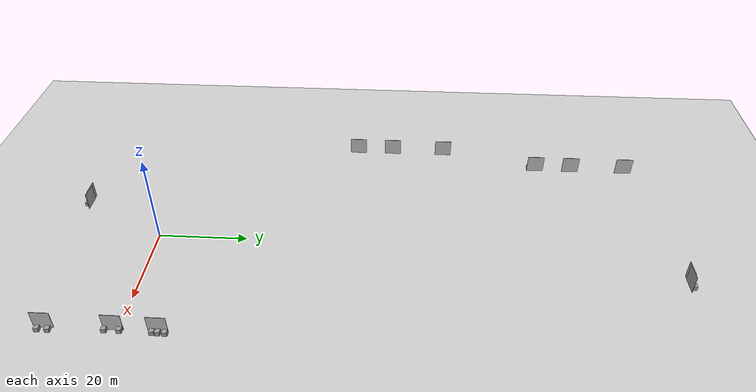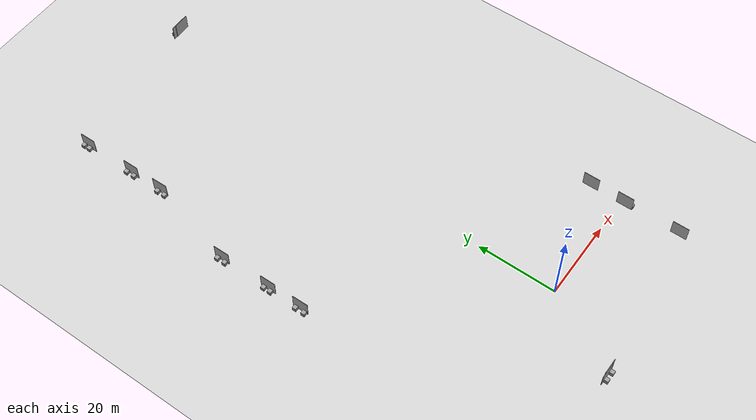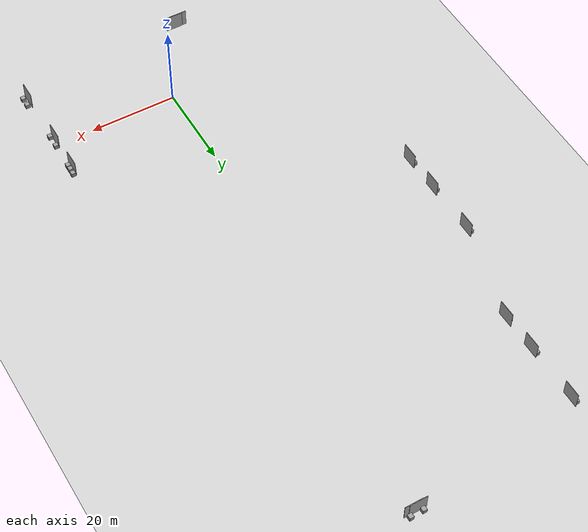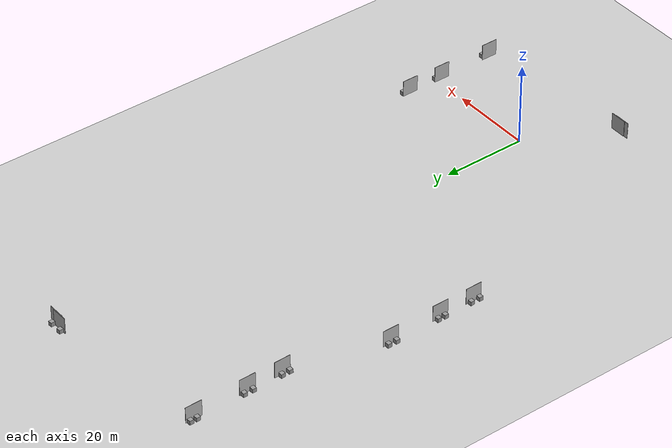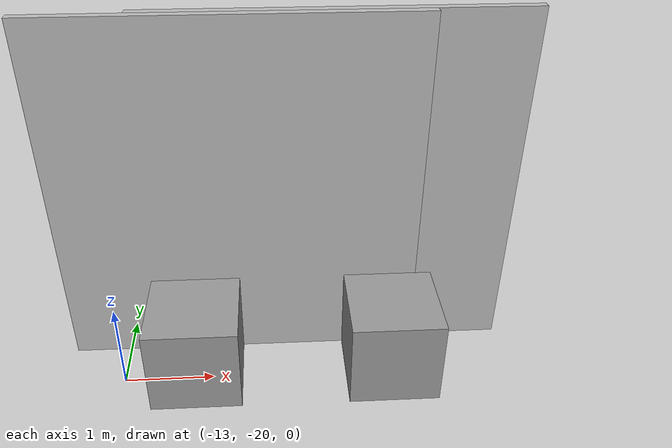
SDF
<sdf version="1.7">
 <world name="default">
  <model name="ground_plane">
   <static>1</static>
   <link name="link">
    <collision name="collision">
     <geometry><plane><normal>0 0 1</normal><size>400 400</size></plane></geometry>
     <surface><friction><ode><mu>100</mu><mu2>50</mu2></ode></friction></surface>
    </collision>
    <visual name="visual">
     <cast_shadows>0</cast_shadows>
     <geometry><plane><normal>0 0 1</normal><size>400 400</size></plane></geometry>
     <material>
      <script><uri>file://media/materials/scripts/gazebo.material</uri><name>Gazebo/Grey</name></script>
     </material>
    </visual>
   </link>
  </model>
  <light name="sun" type="directional">
   <pose>0 0 10 0 -0 0</pose>
   <diffuse>0.8 0.8 0.8 1</diffuse>
   <specular>0.2 0.2 0.2 1</specular>
   <attenuation>
    <range>1000</range>
    <constant>0.9</constant>
    <linear>0.01</linear>
    <quadratic>0.001</quadratic>
   </attenuation>
   <direction>-0.5 0.1 -0.9</direction>
   <spot><inner_angle>0</inner_angle><outer_angle>0</outer_angle><falloff>0</falloff></spot>
  </light>
  <gravity>0 0 -9.8</gravity>
  <magnetic_field>6e-06 2.3e-05 -4.2e-05</magnetic_field>
  <atmosphere type="adiabatic"/>
  <physics name="default_physics" default="0" type="ode">
   <max_step_size>0.001</max_step_size>
   <real_time_factor>1</real_time_factor>
   <real_time_update_rate>1000</real_time_update_rate>
  </physics>
  <scene><ambient>0.4 0.4 0.4 1</ambient><background>0.7 0.7 0.7 1</background><shadows>1</shadows></scene>
  <audio><device>default</device></audio>
  <spherical_coordinates>
   <surface_model>EARTH_WGS84</surface_model>
   <latitude_deg>0</latitude_deg>
   <longitude_deg>0</longitude_deg>
   <elevation>0</elevation>
   <heading_deg>0</heading_deg>
  </spherical_coordinates>
  <model name="unit_box_2">
   <pose>29.2337 9.41175 0.499995 0 -1e-05 -5.5e-05</pose>
   <link name="link">
    <inertial>
     <mass>1</mass>
     <inertia>
      <ixx>0.166667</ixx>
      <ixy>0</ixy>
      <ixz>0</ixz>
      <iyy>0.166667</iyy>
      <iyz>0</iyz>
      <izz>0.166667</izz>
     </inertia>
    </inertial>
    <collision name="collision"><geometry><box><size>1 1 1</size></box></geometry></collision>
    <visual name="visual">
     <geometry><box><size>1 1 1</size></box></geometry>
     <material>
      <script><name>Gazebo/Grey</name><uri>file://media/materials/scripts/gazebo.material</uri></script>
     </material>
    </visual>
   </link>
  </model>
  <model name="unit_box_3">
   <pose>29.1886 7.99611 0.499995 1e-05 -0 0.000161</pose>
   <link name="link">
    <inertial>
     <mass>1</mass>
     <inertia>
      <ixx>0.166667</ixx>
      <ixy>0</ixy>
      <ixz>0</ixz>
      <iyy>0.166667</iyy>
      <iyz>0</iyz>
      <izz>0.166667</izz>
     </inertia>
    </inertial>
    <collision name="collision"><geometry><box><size>1 1 1</size></box></geometry></collision>
    <visual name="visual">
     <geometry><box><size>1 1 1</size></box></geometry>
     <material>
      <script><name>Gazebo/Grey</name><uri>file://media/materials/scripts/gazebo.material</uri></script>
     </material>
    </visual>
   </link>
  </model>
  <model name="Van_gogh1_0">
   <pose>28.6336 9.39859 1.99999 -2e-06 -1e-05 -4e-06</pose>
   <link name="box">
    <pose>0 -1.5 0 0 -0 0</pose>
    <collision name="collision"><geometry><box><size>0.1 4 4</size></box></geometry></collision>
    <visual name="visual">
     <geometry><box><size>0.1 4 4</size></box></geometry>
     <material>
      <script>
       <uri>model://van_gogh1/materials/scripts</uri>
       <uri>model://van_gogh1/materials/textures</uri>
       <name>Van_gogh1/Image</name>
      </script>
     </material>
    </visual>
    <inertial>
     <inertia><ixx>1</ixx><ixy>0</ixy><ixz>0</ixz><iyy>1</iyy><iyz>0</iyz><izz>1</izz></inertia>
     <mass>1</mass>
    </inertial>
   </link>
  </model>
  <model name="unit_box_8">
   <pose>29.1837 6.83521 0.499995 0 1e-05 -1e-06</pose>
   <link name="link">
    <inertial>
     <mass>1</mass>
     <inertia>
      <ixx>0.166667</ixx>
      <ixy>0</ixy>
      <ixz>0</ixz>
      <iyy>0.166667</iyy>
      <iyz>0</iyz>
      <izz>0.166667</izz>
     </inertia>
    </inertial>
    <collision name="collision"><geometry><box><size>1 1 1</size></box></geometry></collision>
    <visual name="visual">
     <geometry><box><size>1 1 1</size></box></geometry>
     <material>
      <script><name>Gazebo/Grey</name><uri>file://media/materials/scripts/gazebo.material</uri></script>
     </material>
    </visual>
   </link>
  </model>
  <model name="Van_gogh1_clone_clone_clone">
   <pose>-13.1447 -19.4061 2 0 -0 1.5627</pose>
   <link name="box">
    <pose>0 -1.5 0 0 -0 0</pose>
    <collision name="collision"><geometry><box><size>0.1 4 4</size></box></geometry></collision>
    <visual name="visual">
     <geometry><box><size>0.1 4 4</size></box></geometry>
     <material>
      <script>
       <uri>model://van_gogh1/materials/scripts</uri>
       <uri>model://van_gogh1/materials/textures</uri>
       <name>Van_gogh1/Image</name>
      </script>
     </material>
    </visual>
    <inertial>
     <inertia><ixx>1</ixx><ixy>0</ixy><ixz>0</ixz><iyy>1</iyy><iyz>0</iyz><izz>1</izz></inertia>
     <mass>1</mass>
    </inertial>
   </link>
  </model>
  <model name="Van_gogh1_0_clone">
   <pose>28.6365 -13.4668 2 0 -3.7e-05 -2.4e-05</pose>
   <link name="box">
    <pose>0 -1.5 0 0 -0 0</pose>
    <collision name="collision"><geometry><box><size>0.1 4 4</size></box></geometry></collision>
    <visual name="visual">
     <geometry><box><size>0.1 4 4</size></box></geometry>
     <material>
      <script>
       <uri>model://van_gogh1/materials/scripts</uri>
       <uri>model://van_gogh1/materials/textures</uri>
       <name>Van_gogh1/Image</name>
      </script>
     </material>
    </visual>
    <inertial>
     <inertia><ixx>1</ixx><ixy>0</ixy><ixz>0</ixz><iyy>1</iyy><iyz>0</iyz><izz>1</izz></inertia>
     <mass>1</mass>
    </inertial>
   </link>
  </model>
  <model name="unit_box_8_clone">
   <pose>29.5601 -13.7609 0.5 0 -0 0.030245</pose>
   <link name="link">
    <inertial>
     <mass>1</mass>
     <inertia>
      <ixx>0.166667</ixx>
      <ixy>0</ixy>
      <ixz>0</ixz>
      <iyy>0.166667</iyy>
      <iyz>0</iyz>
      <izz>0.166667</izz>
     </inertia>
    </inertial>
    <collision name="collision"><geometry><box><size>1 1 1</size></box></geometry></collision>
    <visual name="visual">
     <geometry><box><size>1 1 1</size></box></geometry>
     <material>
      <script><name>Gazebo/Grey</name><uri>file://media/materials/scripts/gazebo.material</uri></script>
     </material>
    </visual>
   </link>
  </model>
  <model name="unit_box_2_clone_0">
   <pose>29.5587 -15.8887 0.499995 -0 1e-05 -0.000163</pose>
   <link name="link">
    <inertial>
     <mass>1</mass>
     <inertia>
      <ixx>0.166667</ixx>
      <ixy>0</ixy>
      <ixz>0</ixz>
      <iyy>0.166667</iyy>
      <iyz>0</iyz>
      <izz>0.166667</izz>
     </inertia>
    </inertial>
    <collision name="collision"><geometry><box><size>1 1 1</size></box></geometry></collision>
    <visual name="visual">
     <geometry><box><size>1 1 1</size></box></geometry>
     <material>
      <script><name>Gazebo/Grey</name><uri>file://media/materials/scripts/gazebo.material</uri></script>
     </material>
    </visual>
   </link>
  </model>
  <model name="Van_gogh1_0_clone_1">
   <pose>-36.1898 65.8584 2 2e-06 -1.1e-05 0.007831</pose>
   <link name="box">
    <pose>0 -1.5 0 0 -0 0</pose>
    <collision name="collision"><geometry><box><size>0.1 4 4</size></box></geometry></collision>
    <visual name="visual">
     <geometry><box><size>0.1 4 4</size></box></geometry>
     <material>
      <script>
       <uri>model://van_gogh1/materials/scripts</uri>
       <uri>model://van_gogh1/materials/textures</uri>
       <name>Van_gogh1/Image</name>
      </script>
     </material>
    </visual>
    <inertial>
     <inertia><ixx>1</ixx><ixy>0</ixy><ixz>0</ixz><iyy>1</iyy><iyz>0</iyz><izz>1</izz></inertia>
     <mass>1</mass>
    </inertial>
   </link>
  </model>
  <model name="unit_box_2_clone_1_clone_clone">
   <pose>-36.7391 65.3428 0.499995 -1e-05 -0 0.007771</pose>
   <link name="link">
    <inertial>
     <mass>1</mass>
     <inertia>
      <ixx>0.166667</ixx>
      <ixy>0</ixy>
      <ixz>0</ixz>
      <iyy>0.166667</iyy>
      <iyz>0</iyz>
      <izz>0.166667</izz>
     </inertia>
    </inertial>
    <collision name="collision"><geometry><box><size>1 1 1</size></box></geometry></collision>
    <visual name="visual">
     <geometry><box><size>1 1 1</size></box></geometry>
     <material>
      <script><name>Gazebo/Grey</name><uri>file://media/materials/scripts/gazebo.material</uri></script>
     </material>
    </visual>
   </link>
  </model>
  <model name="unit_box_2_clone_1_clone_clone_0">
   <pose>-36.7278 63.2748 0.499995 -1e-05 -0 0.008026</pose>
   <link name="link">
    <inertial>
     <mass>1</mass>
     <inertia>
      <ixx>0.166667</ixx>
      <ixy>0</ixy>
      <ixz>0</ixz>
      <iyy>0.166667</iyy>
      <iyz>0</iyz>
      <izz>0.166667</izz>
     </inertia>
    </inertial>
    <collision name="collision"><geometry><box><size>1 1 1</size></box></geometry></collision>
    <visual name="visual">
     <geometry><box><size>1 1 1</size></box></geometry>
     <material>
      <script><name>Gazebo/Grey</name><uri>file://media/materials/scripts/gazebo.material</uri></script>
     </material>
    </visual>
   </link>
  </model>
  <model name="Van_gogh1_0_clone_1_clone">
   <pose>-36.0885 52.928 2 -0 -3e-06 0.007813</pose>
   <link name="box">
    <pose>0 -1.5 0 0 -0 0</pose>
    <collision name="collision"><geometry><box><size>0.1 4 4</size></box></geometry></collision>
    <visual name="visual">
     <geometry><box><size>0.1 4 4</size></box></geometry>
     <material>
      <script>
       <uri>model://van_gogh1/materials/scripts</uri>
       <uri>model://van_gogh1/materials/textures</uri>
       <name>Van_gogh1/Image</name>
      </script>
     </material>
    </visual>
    <inertial>
     <inertia><ixx>1</ixx><ixy>0</ixy><ixz>0</ixz><iyy>1</iyy><iyz>0</iyz><izz>1</izz></inertia>
     <mass>1</mass>
    </inertial>
   </link>
  </model>
  <model name="unit_box_2_clone_1_clone_clone_0_clone">
   <pose>-36.6228 50.5362 0.499995 -1e-05 0 0.009548</pose>
   <link name="link">
    <inertial>
     <mass>1</mass>
     <inertia>
      <ixx>0.166667</ixx>
      <ixy>0</ixy>
      <ixz>0</ixz>
      <iyy>0.166667</iyy>
      <iyz>0</iyz>
      <izz>0.166667</izz>
     </inertia>
    </inertial>
    <collision name="collision"><geometry><box><size>1 1 1</size></box></geometry></collision>
    <visual name="visual">
     <geometry><box><size>1 1 1</size></box></geometry>
     <material>
      <script><name>Gazebo/Grey</name><uri>file://media/materials/scripts/gazebo.material</uri></script>
     </material>
    </visual>
   </link>
  </model>
  <model name="unit_box_2_clone_1_clone_clone_clone">
   <pose>-36.6345 52.3484 0.499996 9e-06 -0 0.007855</pose>
   <link name="link">
    <inertial>
     <mass>1</mass>
     <inertia>
      <ixx>0.166667</ixx>
      <ixy>0</ixy>
      <ixz>0</ixz>
      <iyy>0.166667</iyy>
      <iyz>0</iyz>
      <izz>0.166667</izz>
     </inertia>
    </inertial>
    <collision name="collision"><geometry><box><size>1 1 1</size></box></geometry></collision>
    <visual name="visual">
     <geometry><box><size>1 1 1</size></box></geometry>
     <material>
      <script><name>Gazebo/Grey</name><uri>file://media/materials/scripts/gazebo.material</uri></script>
     </material>
    </visual>
   </link>
  </model>
  <model name="Van_gogh1_0_clone_1_clone_clone">
   <pose>-36.0244 44.0867 2 2e-06 -2e-05 0.009295</pose>
   <link name="box">
    <pose>0 -1.5 0 0 -0 0</pose>
    <collision name="collision"><geometry><box><size>0.1 4 4</size></box></geometry></collision>
    <visual name="visual">
     <geometry><box><size>0.1 4 4</size></box></geometry>
     <material>
      <script>
       <uri>model://van_gogh1/materials/scripts</uri>
       <uri>model://van_gogh1/materials/textures</uri>
       <name>Van_gogh1/Image</name>
      </script>
     </material>
    </visual>
    <inertial>
     <inertia><ixx>1</ixx><ixy>0</ixy><ixz>0</ixz><iyy>1</iyy><iyz>0</iyz><izz>1</izz></inertia>
     <mass>1</mass>
    </inertial>
   </link>
  </model>
  <model name="unit_box_2_clone_1_clone_clone_0_clone_clone">
   <pose>-36.5895 43.6094 0.499995 0 -1e-05 0.028403</pose>
   <link name="link">
    <inertial>
     <mass>1</mass>
     <inertia>
      <ixx>0.166667</ixx>
      <ixy>0</ixy>
      <ixz>0</ixz>
      <iyy>0.166667</iyy>
      <iyz>0</iyz>
      <izz>0.166667</izz>
     </inertia>
    </inertial>
    <collision name="collision"><geometry><box><size>1 1 1</size></box></geometry></collision>
    <visual name="visual">
     <geometry><box><size>1 1 1</size></box></geometry>
     <material>
      <script><name>Gazebo/Grey</name><uri>file://media/materials/scripts/gazebo.material</uri></script>
     </material>
    </visual>
   </link>
  </model>
  <model name="unit_box_2_clone_1_clone_clone_clone_clone">
   <pose>-36.552 41.3188 0.499995 -1e-05 -0 0.015406</pose>
   <link name="link">
    <inertial>
     <mass>1</mass>
     <inertia>
      <ixx>0.166667</ixx>
      <ixy>0</ixy>
      <ixz>0</ixz>
      <iyy>0.166667</iyy>
      <iyz>0</iyz>
      <izz>0.166667</izz>
     </inertia>
    </inertial>
    <collision name="collision"><geometry><box><size>1 1 1</size></box></geometry></collision>
    <visual name="visual">
     <geometry><box><size>1 1 1</size></box></geometry>
     <material>
      <script><name>Gazebo/Grey</name><uri>file://media/materials/scripts/gazebo.material</uri></script>
     </material>
    </visual>
   </link>
  </model>
  <model name="Van_gogh1_clone_clone_clone_clone">
   <pose>-12.0888 -19.3147 2 2e-06 1e-06 1.5627</pose>
   <link name="box">
    <pose>0 -1.5 0 0 -0 0</pose>
    <collision name="collision"><geometry><box><size>0.1 4 4</size></box></geometry></collision>
    <visual name="visual">
     <geometry><box><size>0.1 4 4</size></box></geometry>
     <material>
      <script>
       <uri>model://van_gogh1/materials/scripts</uri>
       <uri>model://van_gogh1/materials/textures</uri>
       <name>Van_gogh1/Image</name>
      </script>
     </material>
    </visual>
    <inertial>
     <inertia><ixx>1</ixx><ixy>0</ixy><ixz>0</ixz><iyy>1</iyy><iyz>0</iyz><izz>1</izz></inertia>
     <mass>1</mass>
    </inertial>
   </link>
  </model>
  <model name="Van_gogh1_0_clone_1_clone_0_clone">
   <pose>-30.5726 110.822 1.99999 -2e-06 -1e-06 0.006999</pose>
   <link name="box">
    <pose>0 -1.5 0 0 -0 0</pose>
    <collision name="collision"><geometry><box><size>0.1 4 4</size></box></geometry></collision>
    <visual name="visual">
     <geometry><box><size>0.1 4 4</size></box></geometry>
     <material>
      <script>
       <uri>model://van_gogh1/materials/scripts</uri>
       <uri>model://van_gogh1/materials/textures</uri>
       <name>Van_gogh1/Image</name>
      </script>
     </material>
    </visual>
    <inertial>
     <inertia><ixx>1</ixx><ixy>0</ixy><ixz>0</ixz><iyy>1</iyy><iyz>0</iyz><izz>1</izz></inertia>
     <mass>1</mass>
    </inertial>
   </link>
  </model>
  <model name="unit_box_2_clone_1_clone_clone_clone_0">
   <pose>-31.1219 110.52 0.499995 0 1e-05 0.00601</pose>
   <link name="link">
    <inertial>
     <mass>1</mass>
     <inertia>
      <ixx>0.166667</ixx>
      <ixy>0</ixy>
      <ixz>0</ixz>
      <iyy>0.166667</iyy>
      <iyz>0</iyz>
      <izz>0.166667</izz>
     </inertia>
    </inertial>
    <collision name="collision"><geometry><box><size>1 1 1</size></box></geometry></collision>
    <visual name="visual">
     <geometry><box><size>1 1 1</size></box></geometry>
     <material>
      <script><name>Gazebo/Grey</name><uri>file://media/materials/scripts/gazebo.material</uri></script>
     </material>
    </visual>
   </link>
  </model>
  <model name="unit_box_2_clone_1_clone_clone_clone_0_clone">
   <pose>-31.1321 108.918 0.499995 -1e-05 -0 0.00601</pose>
   <link name="link">
    <inertial>
     <mass>1</mass>
     <inertia>
      <ixx>0.166667</ixx>
      <ixy>0</ixy>
      <ixz>0</ixz>
      <iyy>0.166667</iyy>
      <iyz>0</iyz>
      <izz>0.166667</izz>
     </inertia>
    </inertial>
    <collision name="collision"><geometry><box><size>1 1 1</size></box></geometry></collision>
    <visual name="visual">
     <geometry><box><size>1 1 1</size></box></geometry>
     <material>
      <script><name>Gazebo/Grey</name><uri>file://media/materials/scripts/gazebo.material</uri></script>
     </material>
    </visual>
   </link>
  </model>
  <model name="Van_gogh1_0_clone_1_clone_0_clone_clone">
   <pose>-30.4492 97.6323 2 -1e-06 1e-06 0.009152</pose>
   <link name="box">
    <pose>0 -1.5 0 0 -0 0</pose>
    <collision name="collision"><geometry><box><size>0.1 4 4</size></box></geometry></collision>
    <visual name="visual">
     <geometry><box><size>0.1 4 4</size></box></geometry>
     <material>
      <script>
       <uri>model://van_gogh1/materials/scripts</uri>
       <uri>model://van_gogh1/materials/textures</uri>
       <name>Van_gogh1/Image</name>
      </script>
     </material>
    </visual>
    <inertial>
     <inertia><ixx>1</ixx><ixy>0</ixy><ixz>0</ixz><iyy>1</iyy><iyz>0</iyz><izz>1</izz></inertia>
     <mass>1</mass>
    </inertial>
   </link>
  </model>
  <model name="unit_box_2_clone_1_clone_clone_clone_0_clone_clone">
   <pose>-31.0067 97.359 0.499995 -1e-05 -0 0.00601</pose>
   <link name="link">
    <inertial>
     <mass>1</mass>
     <inertia>
      <ixx>0.166667</ixx>
      <ixy>0</ixy>
      <ixz>0</ixz>
      <iyy>0.166667</iyy>
      <iyz>0</iyz>
      <izz>0.166667</izz>
     </inertia>
    </inertial>
    <collision name="collision"><geometry><box><size>1 1 1</size></box></geometry></collision>
    <visual name="visual">
     <geometry><box><size>1 1 1</size></box></geometry>
     <material>
      <script><name>Gazebo/Grey</name><uri>file://media/materials/scripts/gazebo.material</uri></script>
     </material>
    </visual>
   </link>
  </model>
  <model name="unit_box_2_clone_1_clone_clone_clone_0_clone_clone_0">
   <pose>-30.9809 95.1582 0.499995 0 1e-05 0.000996</pose>
   <link name="link">
    <inertial>
     <mass>1</mass>
     <inertia>
      <ixx>0.166667</ixx>
      <ixy>0</ixy>
      <ixz>0</ixz>
      <iyy>0.166667</iyy>
      <iyz>0</iyz>
      <izz>0.166667</izz>
     </inertia>
    </inertial>
    <collision name="collision"><geometry><box><size>1 1 1</size></box></geometry></collision>
    <visual name="visual">
     <geometry><box><size>1 1 1</size></box></geometry>
     <material>
      <script><name>Gazebo/Grey</name><uri>file://media/materials/scripts/gazebo.material</uri></script>
     </material>
    </visual>
   </link>
  </model>
  <model name="Van_gogh1_clone_clone_clone_clone_clone">
   <pose>8.04958 114.983 1.99999 -2e-06 -2.6e-05 1.58363</pose>
   <link name="box">
    <pose>0 -1.5 0 0 -0 0</pose>
    <collision name="collision"><geometry><box><size>0.1 4 4</size></box></geometry></collision>
    <visual name="visual">
     <geometry><box><size>0.1 4 4</size></box></geometry>
     <material>
      <script>
       <uri>model://van_gogh1/materials/scripts</uri>
       <uri>model://van_gogh1/materials/textures</uri>
       <name>Van_gogh1/Image</name>
      </script>
     </material>
    </visual>
    <inertial>
     <inertia><ixx>1</ixx><ixy>0</ixy><ixz>0</ixz><iyy>1</iyy><iyz>0</iyz><izz>1</izz></inertia>
     <mass>1</mass>
    </inertial>
   </link>
  </model>
  <model name="unit_box_2_clone_1_clone_clone_clone_0_clone_0">
   <pose>7.52635 115.627 0.5 0 -0 0.014079</pose>
   <link name="link">
    <inertial>
     <mass>1</mass>
     <inertia>
      <ixx>0.166667</ixx>
      <ixy>0</ixy>
      <ixz>0</ixz>
      <iyy>0.166667</iyy>
      <iyz>0</iyz>
      <izz>0.166667</izz>
     </inertia>
    </inertial>
    <collision name="collision"><geometry><box><size>1 1 1</size></box></geometry></collision>
    <visual name="visual">
     <geometry><box><size>1 1 1</size></box></geometry>
     <material>
      <script><name>Gazebo/Grey</name><uri>file://media/materials/scripts/gazebo.material</uri></script>
     </material>
    </visual>
   </link>
  </model>
  <model name="unit_box_2_clone_1_clone_clone_clone_0_clone_1">
   <pose>10.4593 115.692 0.499995 -1e-05 0 0.018907</pose>
   <link name="link">
    <inertial>
     <mass>1</mass>
     <inertia>
      <ixx>0.166667</ixx>
      <ixy>0</ixy>
      <ixz>0</ixz>
      <iyy>0.166667</iyy>
      <iyz>0</iyz>
      <izz>0.166667</izz>
     </inertia>
    </inertial>
    <collision name="collision"><geometry><box><size>1 1 1</size></box></geometry></collision>
    <visual name="visual">
     <geometry><box><size>1 1 1</size></box></geometry>
     <material>
      <script><name>Gazebo/Grey</name><uri>file://media/materials/scripts/gazebo.material</uri></script>
     </material>
    </visual>
   </link>
  </model>
  <model name="unit_box_2_clone_1_clone_clone_0_clone_clone_clone">
   <pose>-12.1666 -19.9661 0.499995 -0 1e-05 -0.008085</pose>
   <link name="link">
    <inertial>
     <mass>1</mass>
     <inertia>
      <ixx>0.166667</ixx>
      <ixy>0</ixy>
      <ixz>0</ixz>
      <iyy>0.166667</iyy>
      <iyz>0</iyz>
      <izz>0.166667</izz>
     </inertia>
    </inertial>
    <collision name="collision"><geometry><box><size>1 1 1</size></box></geometry></collision>
    <visual name="visual">
     <geometry><box><size>1 1 1</size></box></geometry>
     <material>
      <script><name>Gazebo/Grey</name><uri>file://media/materials/scripts/gazebo.material</uri></script>
     </material>
    </visual>
   </link>
  </model>
  <model name="unit_box_2_clone_1_clone_clone_0_clone_clone_clone_0">
   <pose>-9.97985 -19.992 0.499995 1e-05 0 -0.009188</pose>
   <link name="link">
    <inertial>
     <mass>1</mass>
     <inertia>
      <ixx>0.166667</ixx>
      <ixy>0</ixy>
      <ixz>0</ixz>
      <iyy>0.166667</iyy>
      <iyz>0</iyz>
      <izz>0.166667</izz>
     </inertia>
    </inertial>
    <collision name="collision"><geometry><box><size>1 1 1</size></box></geometry></collision>
    <visual name="visual">
     <geometry><box><size>1 1 1</size></box></geometry>
     <material>
      <script><name>Gazebo/Grey</name><uri>file://media/materials/scripts/gazebo.material</uri></script>
     </material>
    </visual>
   </link>
  </model>
  <model name="Van_gogh1_0_clone_1_clone_0_clone_clone_clone">
   <pose>-30.4046 88.9239 2 -0 -8e-06 0.019493</pose>
   <link name="box">
    <pose>0 -1.5 0 0 -0 0</pose>
    <collision name="collision"><geometry><box><size>0.1 4 4</size></box></geometry></collision>
    <visual name="visual">
     <geometry><box><size>0.1 4 4</size></box></geometry>
     <material>
      <script>
       <uri>model://van_gogh1/materials/scripts</uri>
       <uri>model://van_gogh1/materials/textures</uri>
       <name>Van_gogh1/Image</name>
      </script>
     </material>
    </visual>
    <inertial>
     <inertia><ixx>1</ixx><ixy>0</ixy><ixz>0</ixz><iyy>1</iyy><iyz>0</iyz><izz>1</izz></inertia>
     <mass>1</mass>
    </inertial>
   </link>
  </model>
  <model name="unit_box_2_clone_1_clone_clone_clone_0_clone_clone_clone">
   <pose>-30.9743 87.9868 0.499995 -1e-05 -0 0.032029</pose>
   <link name="link">
    <inertial>
     <mass>1</mass>
     <inertia>
      <ixx>0.166667</ixx>
      <ixy>0</ixy>
      <ixz>0</ixz>
      <iyy>0.166667</iyy>
      <iyz>0</iyz>
      <izz>0.166667</izz>
     </inertia>
    </inertial>
    <collision name="collision"><geometry><box><size>1 1 1</size></box></geometry></collision>
    <visual name="visual">
     <geometry><box><size>1 1 1</size></box></geometry>
     <material>
      <script><name>Gazebo/Grey</name><uri>file://media/materials/scripts/gazebo.material</uri></script>
     </material>
    </visual>
   </link>
  </model>
  <model name="unit_box_2_clone_1_clone_clone_clone_0_clone_clone_clone_0">
   <pose>-30.9079 85.9571 0.5 0 -0 0.020619</pose>
   <link name="link">
    <inertial>
     <mass>1</mass>
     <inertia>
      <ixx>0.166667</ixx>
      <ixy>0</ixy>
      <ixz>0</ixz>
      <iyy>0.166667</iyy>
      <iyz>0</iyz>
      <izz>0.166667</izz>
     </inertia>
    </inertial>
    <collision name="collision"><geometry><box><size>1 1 1</size></box></geometry></collision>
    <visual name="visual">
     <geometry><box><size>1 1 1</size></box></geometry>
     <material>
      <script><name>Gazebo/Grey</name><uri>file://media/materials/scripts/gazebo.material</uri></script>
     </material>
    </visual>
   </link>
  </model>
  <model name="Van_gogh1_0_clone_0">
   <pose>28.5089 0.455838 2 0 5e-06 4e-06</pose>
   <link name="box">
    <pose>0 -1.5 0 0 -0 0</pose>
    <collision name="collision"><geometry><box><size>0.1 4 4</size></box></geometry></collision>
    <visual name="visual">
     <geometry><box><size>0.1 4 4</size></box></geometry>
     <material>
      <script>
       <uri>model://van_gogh1/materials/scripts</uri>
       <uri>model://van_gogh1/materials/textures</uri>
       <name>Van_gogh1/Image</name>
      </script>
     </material>
    </visual>
    <inertial>
     <inertia><ixx>1</ixx><ixy>0</ixy><ixz>0</ixz><iyy>1</iyy><iyz>0</iyz><izz>1</izz></inertia>
     <mass>1</mass>
    </inertial>
   </link>
  </model>
  <model name="unit_box_8_clone_0">
   <pose>29.0669 -2.6934 0.499995 -0 1e-05 -0.010754</pose>
   <link name="link">
    <inertial>
     <mass>1</mass>
     <inertia>
      <ixx>0.166667</ixx>
      <ixy>0</ixy>
      <ixz>0</ixz>
      <iyy>0.166667</iyy>
      <iyz>0</iyz>
      <izz>0.166667</izz>
     </inertia>
    </inertial>
    <collision name="collision"><geometry><box><size>1 1 1</size></box></geometry></collision>
    <visual name="visual">
     <geometry><box><size>1 1 1</size></box></geometry>
     <material>
      <script><name>Gazebo/Grey</name><uri>file://media/materials/scripts/gazebo.material</uri></script>
     </material>
    </visual>
   </link>
  </model>
  <model name="unit_box_8_clone_1">
   <pose>29.0593 0.325329 0.499995 1e-05 -0 -5.9e-05</pose>
   <link name="link">
    <inertial>
     <mass>1</mass>
     <inertia>
      <ixx>0.166667</ixx>
      <ixy>0</ixy>
      <ixz>0</ixz>
      <iyy>0.166667</iyy>
      <iyz>0</iyz>
      <izz>0.166667</izz>
     </inertia>
    </inertial>
    <collision name="collision"><geometry><box><size>1 1 1</size></box></geometry></collision>
    <visual name="visual">
     <geometry><box><size>1 1 1</size></box></geometry>
     <material>
      <script><name>Gazebo/Grey</name><uri>file://media/materials/scripts/gazebo.material</uri></script>
     </material>
    </visual>
   </link>
  </model>
  <model name="Van_gogh1_clone_clone_clone_clone_clone_clone">
   <pose>6.99177 115.069 1.99999 -2e-06 -2e-05 1.58385</pose>
   <link name="box">
    <pose>0 -1.5 0 0 -0 0</pose>
    <collision name="collision"><geometry><box><size>0.1 4 4</size></box></geometry></collision>
    <visual name="visual">
     <geometry><box><size>0.1 4 4</size></box></geometry>
     <material>
      <script>
       <uri>model://van_gogh1/materials/scripts</uri>
       <uri>model://van_gogh1/materials/textures</uri>
       <name>Van_gogh1/Image</name>
      </script>
     </material>
    </visual>
    <inertial>
     <inertia><ixx>1</ixx><ixy>0</ixy><ixz>0</ixz><iyy>1</iyy><iyz>0</iyz><izz>1</izz></inertia>
     <mass>1</mass>
    </inertial>
   </link>
  </model>
 </world>
</sdf>
